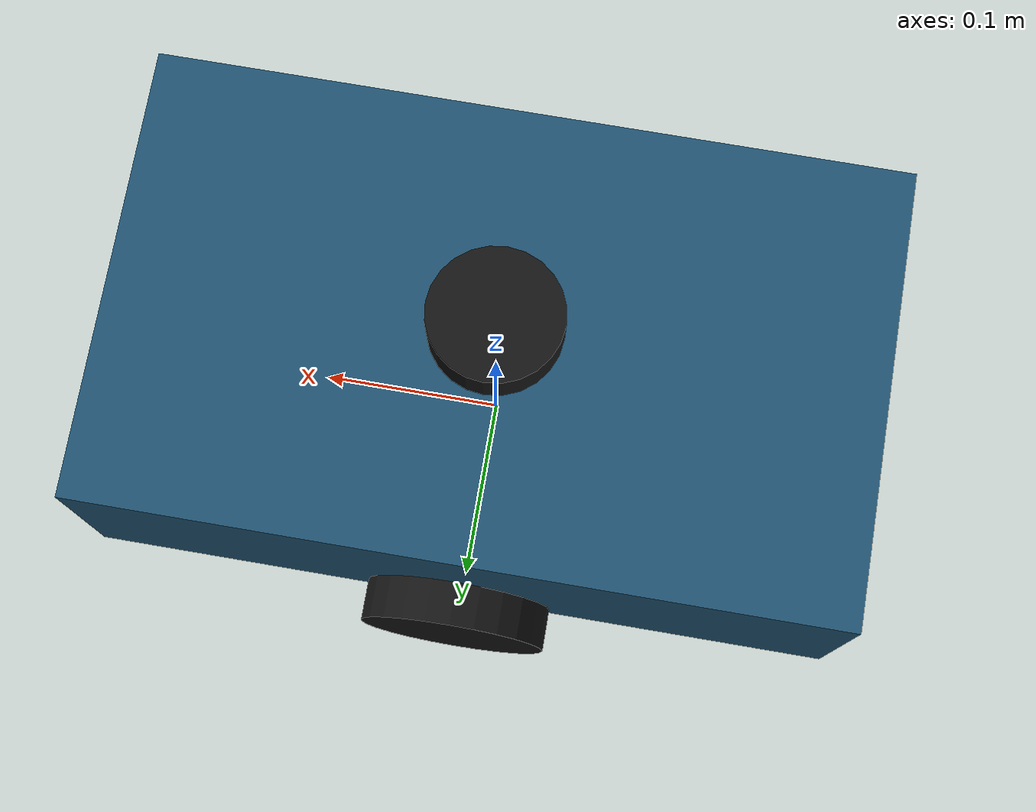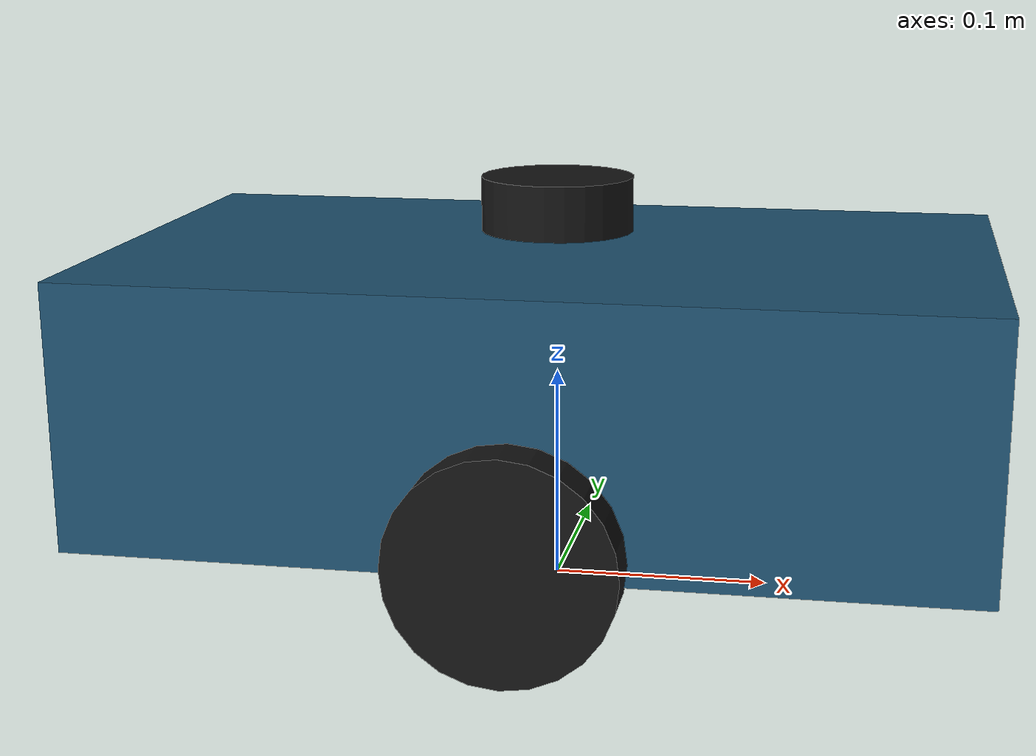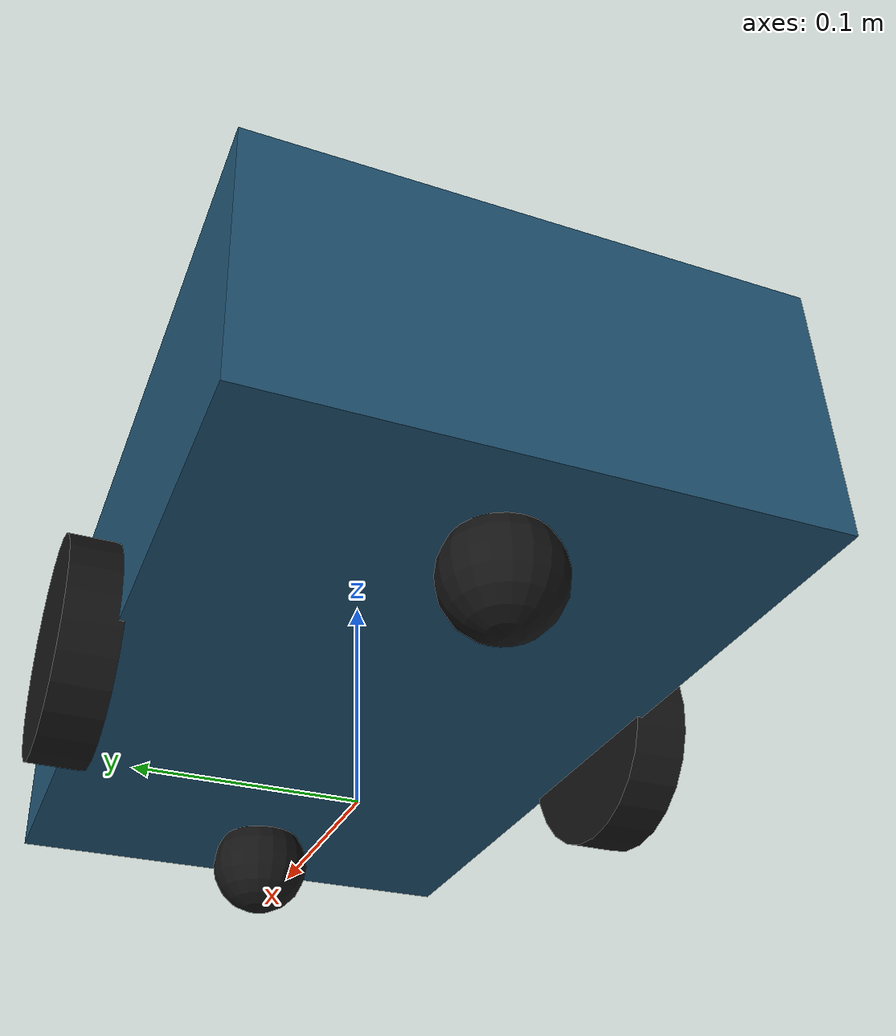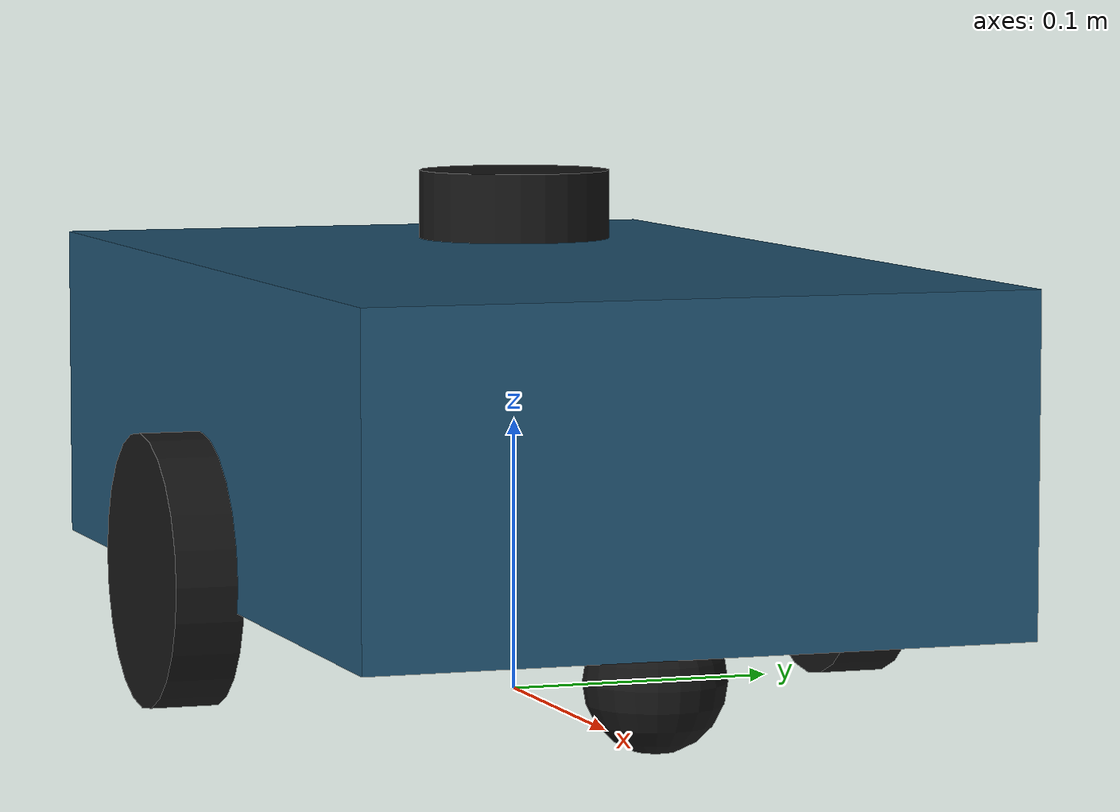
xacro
<?xml version="1.0"?>
<robot xmlns:xacro="http://www.ros.org/wiki/xacro" name="industrial_amr">
  <xacro:arg name="controllers_file" default=""/>
  <material name="body_blue"><color rgba="0.12 0.32 0.44 1"/></material>
  <material name="tire"><color rgba="0.08 0.08 0.08 1"/></material>
  <link name="base_footprint"/>
  <joint name="base_joint" type="fixed"><parent link="base_footprint"/><child link="base_link"/><origin xyz="0 0 0.10"/></joint>
  <link name="base_link">
    <inertial><mass value="10"/><inertia ixx="0.06" ixy="0" ixz="0" iyy="0.145333" iyz="0" izz="0.181333"/></inertial>
    <visual><geometry><box size="0.40 0.24 0.12"/></geometry><material name="body_blue"/></visual>
    <collision><geometry><box size="0.40 0.24 0.12"/></geometry></collision>
  </link>
  <xacro:macro name="wheel" params="side y">
    <link name="${side}_wheel_link">
      <inertial><mass value="0.5"/><inertia ixx="0.000339" ixy="0" ixz="0" iyy="0.000625" iyz="0" izz="0.000339"/></inertial>
      <visual><origin rpy="${pi/2} 0 0"/><geometry><cylinder radius="0.05" length="0.025"/></geometry><material name="tire"/></visual>
      <collision><origin rpy="${pi/2} 0 0"/><geometry><cylinder radius="0.05" length="0.025"/></geometry></collision>
    </link>
    <joint name="${side}_wheel_joint" type="continuous"><parent link="base_link"/><child link="${side}_wheel_link"/><origin xyz="0 ${y} -0.05"/><axis xyz="0 1 0"/><dynamics damping="0.01" friction="0.0"/></joint>
    <gazebo reference="${side}_wheel_link"><mu1>1.0</mu1><mu2>1.0</mu2><kp>1000000</kp><kd>10</kd></gazebo>
  </xacro:macro>
  <xacro:wheel side="left" y="0.13"/>
  <xacro:wheel side="right" y="-0.13"/>
  <xacro:macro name="caster" params="name x">
    <link name="${name}">
      <inertial><mass value="0.1"/><inertia ixx="0.000025" ixy="0" ixz="0" iyy="0.000025" iyz="0" izz="0.000025"/></inertial>
      <visual><geometry><sphere radius="0.025"/></geometry><material name="tire"/></visual>
      <collision><geometry><sphere radius="0.025"/></geometry></collision>
    </link>
    <joint name="${name}_joint" type="fixed"><parent link="base_link"/><child link="${name}"/><origin xyz="${x} 0 -0.075"/></joint>
    <gazebo reference="${name}"><mu1>0.01</mu1><mu2>0.01</mu2></gazebo>
  </xacro:macro>
  <xacro:caster name="front_caster" x="0.15"/><xacro:caster name="rear_caster" x="-0.15"/>
  <link name="laser_link"><inertial><mass value="0.1"/><inertia ixx="0.0001" ixy="0" ixz="0" iyy="0.0001" iyz="0" izz="0.0001"/></inertial><visual><geometry><cylinder radius="0.035" length="0.025"/></geometry><material name="tire"/></visual></link>
  <joint name="laser_joint" type="fixed"><parent link="base_link"/><child link="laser_link"/><origin xyz="0 0 0.08"/></joint>
  <link name="imu_link"/>
  <joint name="imu_joint" type="fixed"><parent link="base_link"/><child link="imu_link"/></joint>
  <gazebo reference="laser_link">
    <sensor name="lidar" type="gpu_lidar"><topic>/scan</topic><gz_frame_id>laser_link</gz_frame_id><always_on>true</always_on><update_rate>10</update_rate>
      <lidar><scan><horizontal><samples>720</samples><resolution>1</resolution><min_angle>-${pi}</min_angle><max_angle>${pi}</max_angle></horizontal></scan><range><min>0.12</min><max>10.0</max><resolution>0.01</resolution></range></lidar>
    </sensor>
  </gazebo>
  <gazebo reference="imu_link"><sensor name="imu" type="imu"><topic>/imu</topic><gz_frame_id>imu_link</gz_frame_id><always_on>true</always_on><update_rate>50</update_rate></sensor></gazebo>
  <ros2_control name="GazeboSystem" type="system">
    <hardware><plugin>gz_ros2_control/GazeboSimSystem</plugin></hardware>
    <joint name="left_wheel_joint"><command_interface name="velocity"/><state_interface name="position"/><state_interface name="velocity"/></joint>
    <joint name="right_wheel_joint"><command_interface name="velocity"/><state_interface name="position"/><state_interface name="velocity"/></joint>
  </ros2_control>
  <gazebo>
    <plugin filename="gz_ros2_control-system" name="gz_ros2_control::GazeboSimROS2ControlPlugin">
      <parameters>$(arg controllers_file)</parameters>
      <ros><remapping>/diff_drive_controller/odom:=/odom</remapping></ros>
    </plugin>
  </gazebo>
</robot>
